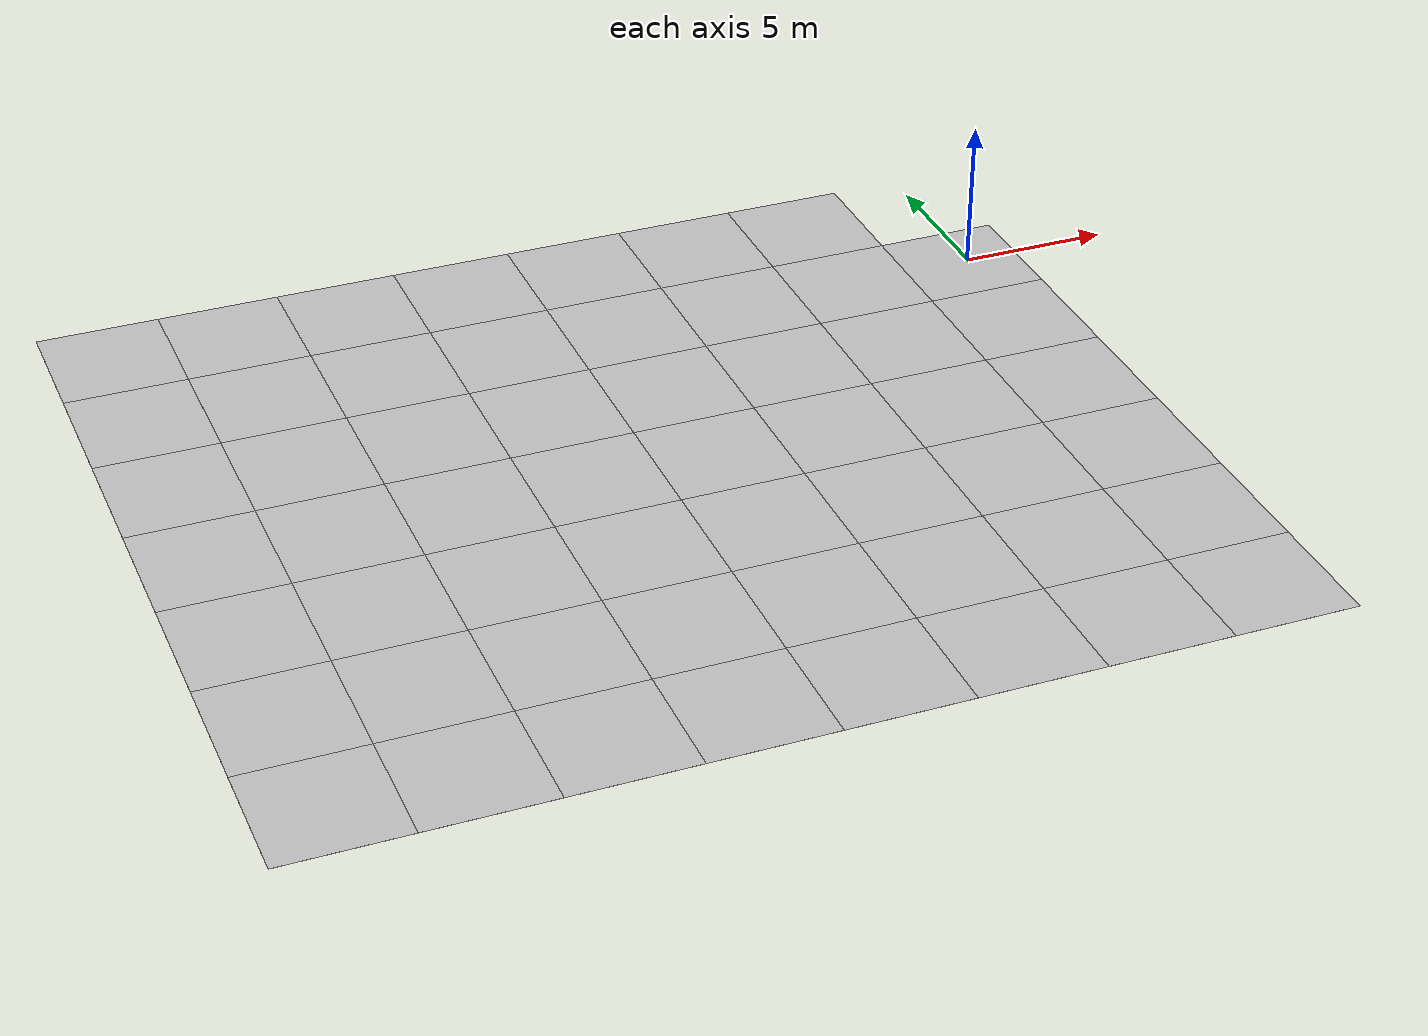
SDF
<sdf version="1.6">
 <world name="default">
  <model name="Tile/11-8">
   <static>1</static>
   <link name="link">
    <collision name="collision">
     <geometry><plane><normal>0 0 1</normal><size>4.096 4.096</size></plane></geometry>
     <surface><friction><ode><mu>100</mu><mu2>50</mu2></ode></friction></surface>
    </collision>
    <visual name="visual">
     <cast_shadows>0</cast_shadows>
     <geometry><plane><normal>0 0 1</normal><size>4.096 4.096</size></plane></geometry>
     <material>
      <script>
       <uri>file://materials/scripts</uri>
       <uri>file://materials/textures</uri>
       <name>Tile/5eab350b8220ac9944dbdfa4ac3288c7c17e24c3bf5df0dfcf6173d64dae00a1</name>
      </script>
     </material>
    </visual>
   </link>
   <pose>-28.969873005767766 -20.528103275294235 0 0 -0 0</pose>
  </model>
  <model name="Tile/11-9">
   <static>1</static>
   <link name="link">
    <collision name="collision">
     <geometry><plane><normal>0 0 1</normal><size>4.096 4.096</size></plane></geometry>
     <surface><friction><ode><mu>100</mu><mu2>50</mu2></ode></friction></surface>
    </collision>
    <visual name="visual">
     <cast_shadows>0</cast_shadows>
     <geometry><plane><normal>0 0 1</normal><size>4.096 4.096</size></plane></geometry>
     <material>
      <script>
       <uri>file://materials/scripts</uri>
       <uri>file://materials/textures</uri>
       <name>Tile/5eab350b8220ac9944dbdfa4ac3288c7c17e24c3bf5df0dfcf6173d64dae00a1</name>
      </script>
     </material>
    </visual>
   </link>
   <pose>-28.969873005767766 -16.43210327529424 0 0 -0 0</pose>
  </model>
  <model name="Tile/11-10">
   <static>1</static>
   <link name="link">
    <collision name="collision">
     <geometry><plane><normal>0 0 1</normal><size>4.096 4.096</size></plane></geometry>
     <surface><friction><ode><mu>100</mu><mu2>50</mu2></ode></friction></surface>
    </collision>
    <visual name="visual">
     <cast_shadows>0</cast_shadows>
     <geometry><plane><normal>0 0 1</normal><size>4.096 4.096</size></plane></geometry>
     <material>
      <script>
       <uri>file://materials/scripts</uri>
       <uri>file://materials/textures</uri>
       <name>Tile/5eab350b8220ac9944dbdfa4ac3288c7c17e24c3bf5df0dfcf6173d64dae00a1</name>
      </script>
     </material>
    </visual>
   </link>
   <pose>-28.969873005767766 -12.336103275294235 0 0 -0 0</pose>
  </model>
  <model name="Tile/11-11">
   <static>1</static>
   <link name="link">
    <collision name="collision">
     <geometry><plane><normal>0 0 1</normal><size>4.096 4.096</size></plane></geometry>
     <surface><friction><ode><mu>100</mu><mu2>50</mu2></ode></friction></surface>
    </collision>
    <visual name="visual">
     <cast_shadows>0</cast_shadows>
     <geometry><plane><normal>0 0 1</normal><size>4.096 4.096</size></plane></geometry>
     <material>
      <script>
       <uri>file://materials/scripts</uri>
       <uri>file://materials/textures</uri>
       <name>Tile/5eab350b8220ac9944dbdfa4ac3288c7c17e24c3bf5df0dfcf6173d64dae00a1</name>
      </script>
     </material>
    </visual>
   </link>
   <pose>-28.969873005767766 -8.240103275294238 0 0 -0 0</pose>
  </model>
  <model name="Tile/11-12">
   <static>1</static>
   <link name="link">
    <collision name="collision">
     <geometry><plane><normal>0 0 1</normal><size>4.096 4.096</size></plane></geometry>
     <surface><friction><ode><mu>100</mu><mu2>50</mu2></ode></friction></surface>
    </collision>
    <visual name="visual">
     <cast_shadows>0</cast_shadows>
     <geometry><plane><normal>0 0 1</normal><size>4.096 4.096</size></plane></geometry>
     <material>
      <script>
       <uri>file://materials/scripts</uri>
       <uri>file://materials/textures</uri>
       <name>Tile/eec58966ef78e20460b21e2e84b9e3ab91f2bbebfbbf568b90aaca1a8794eb22</name>
      </script>
     </material>
    </visual>
   </link>
   <pose>-28.969873005767766 -4.144103275294235 0 0 -0 0</pose>
  </model>
  <model name="Tile/11-13">
   <static>1</static>
   <link name="link">
    <collision name="collision">
     <geometry><plane><normal>0 0 1</normal><size>4.096 4.096</size></plane></geometry>
     <surface><friction><ode><mu>100</mu><mu2>50</mu2></ode></friction></surface>
    </collision>
    <visual name="visual">
     <cast_shadows>0</cast_shadows>
     <geometry><plane><normal>0 0 1</normal><size>4.096 4.096</size></plane></geometry>
     <material>
      <script>
       <uri>file://materials/scripts</uri>
       <uri>file://materials/textures</uri>
       <name>Tile/5eab350b8220ac9944dbdfa4ac3288c7c17e24c3bf5df0dfcf6173d64dae00a1</name>
      </script>
     </material>
    </visual>
   </link>
   <pose>-28.969873005767766 -0.0481032752942383 0 0 -0 0</pose>
  </model>
  <model name="Tile/11-14">
   <static>1</static>
   <link name="link">
    <collision name="collision">
     <geometry><plane><normal>0 0 1</normal><size>4.096 4.096</size></plane></geometry>
     <surface><friction><ode><mu>100</mu><mu2>50</mu2></ode></friction></surface>
    </collision>
    <visual name="visual">
     <cast_shadows>0</cast_shadows>
     <geometry><plane><normal>0 0 1</normal><size>4.096 4.096</size></plane></geometry>
     <material>
      <script>
       <uri>file://materials/scripts</uri>
       <uri>file://materials/textures</uri>
       <name>Tile/5eab350b8220ac9944dbdfa4ac3288c7c17e24c3bf5df0dfcf6173d64dae00a1</name>
      </script>
     </material>
    </visual>
   </link>
   <pose>-28.969873005767766 4.047896724705765 0 0 -0 0</pose>
  </model>
  <model name="Tile/12-8">
   <static>1</static>
   <link name="link">
    <collision name="collision">
     <geometry><plane><normal>0 0 1</normal><size>4.096 4.096</size></plane></geometry>
     <surface><friction><ode><mu>100</mu><mu2>50</mu2></ode></friction></surface>
    </collision>
    <visual name="visual">
     <cast_shadows>0</cast_shadows>
     <geometry><plane><normal>0 0 1</normal><size>4.096 4.096</size></plane></geometry>
     <material>
      <script>
       <uri>file://materials/scripts</uri>
       <uri>file://materials/textures</uri>
       <name>Tile/5eab350b8220ac9944dbdfa4ac3288c7c17e24c3bf5df0dfcf6173d64dae00a1</name>
      </script>
     </material>
    </visual>
   </link>
   <pose>-24.873873005767763 -20.528103275294235 0 0 -0 0</pose>
  </model>
  <model name="Tile/12-9">
   <static>1</static>
   <link name="link">
    <collision name="collision">
     <geometry><plane><normal>0 0 1</normal><size>4.096 4.096</size></plane></geometry>
     <surface><friction><ode><mu>100</mu><mu2>50</mu2></ode></friction></surface>
    </collision>
    <visual name="visual">
     <cast_shadows>0</cast_shadows>
     <geometry><plane><normal>0 0 1</normal><size>4.096 4.096</size></plane></geometry>
     <material>
      <script>
       <uri>file://materials/scripts</uri>
       <uri>file://materials/textures</uri>
       <name>Tile/5eab350b8220ac9944dbdfa4ac3288c7c17e24c3bf5df0dfcf6173d64dae00a1</name>
      </script>
     </material>
    </visual>
   </link>
   <pose>-24.873873005767763 -16.43210327529424 0 0 -0 0</pose>
  </model>
  <model name="Tile/12-10">
   <static>1</static>
   <link name="link">
    <collision name="collision">
     <geometry><plane><normal>0 0 1</normal><size>4.096 4.096</size></plane></geometry>
     <surface><friction><ode><mu>100</mu><mu2>50</mu2></ode></friction></surface>
    </collision>
    <visual name="visual">
     <cast_shadows>0</cast_shadows>
     <geometry><plane><normal>0 0 1</normal><size>4.096 4.096</size></plane></geometry>
     <material>
      <script>
       <uri>file://materials/scripts</uri>
       <uri>file://materials/textures</uri>
       <name>Tile/5eab350b8220ac9944dbdfa4ac3288c7c17e24c3bf5df0dfcf6173d64dae00a1</name>
      </script>
     </material>
    </visual>
   </link>
   <pose>-24.873873005767763 -12.336103275294235 0 0 -0 0</pose>
  </model>
  <model name="Tile/12-11">
   <static>1</static>
   <link name="link">
    <collision name="collision">
     <geometry><plane><normal>0 0 1</normal><size>4.096 4.096</size></plane></geometry>
     <surface><friction><ode><mu>100</mu><mu2>50</mu2></ode></friction></surface>
    </collision>
    <visual name="visual">
     <cast_shadows>0</cast_shadows>
     <geometry><plane><normal>0 0 1</normal><size>4.096 4.096</size></plane></geometry>
     <material>
      <script>
       <uri>file://materials/scripts</uri>
       <uri>file://materials/textures</uri>
       <name>Tile/5eab350b8220ac9944dbdfa4ac3288c7c17e24c3bf5df0dfcf6173d64dae00a1</name>
      </script>
     </material>
    </visual>
   </link>
   <pose>-24.873873005767763 -8.240103275294238 0 0 -0 0</pose>
  </model>
  <model name="Tile/12-12">
   <static>1</static>
   <link name="link">
    <collision name="collision">
     <geometry><plane><normal>0 0 1</normal><size>4.096 4.096</size></plane></geometry>
     <surface><friction><ode><mu>100</mu><mu2>50</mu2></ode></friction></surface>
    </collision>
    <visual name="visual">
     <cast_shadows>0</cast_shadows>
     <geometry><plane><normal>0 0 1</normal><size>4.096 4.096</size></plane></geometry>
     <material>
      <script>
       <uri>file://materials/scripts</uri>
       <uri>file://materials/textures</uri>
       <name>Tile/29ee3751b4b6f8a402ac6ea02498707a3ae5206cbc7031206f818a8b08b0fa33</name>
      </script>
     </material>
    </visual>
   </link>
   <pose>-24.873873005767763 -4.144103275294235 0 0 -0 0</pose>
  </model>
  <model name="Tile/12-13">
   <static>1</static>
   <link name="link">
    <collision name="collision">
     <geometry><plane><normal>0 0 1</normal><size>4.096 4.096</size></plane></geometry>
     <surface><friction><ode><mu>100</mu><mu2>50</mu2></ode></friction></surface>
    </collision>
    <visual name="visual">
     <cast_shadows>0</cast_shadows>
     <geometry><plane><normal>0 0 1</normal><size>4.096 4.096</size></plane></geometry>
     <material>
      <script>
       <uri>file://materials/scripts</uri>
       <uri>file://materials/textures</uri>
       <name>Tile/5eab350b8220ac9944dbdfa4ac3288c7c17e24c3bf5df0dfcf6173d64dae00a1</name>
      </script>
     </material>
    </visual>
   </link>
   <pose>-24.873873005767763 -0.0481032752942383 0 0 -0 0</pose>
  </model>
  <model name="Tile/12-14">
   <static>1</static>
   <link name="link">
    <collision name="collision">
     <geometry><plane><normal>0 0 1</normal><size>4.096 4.096</size></plane></geometry>
     <surface><friction><ode><mu>100</mu><mu2>50</mu2></ode></friction></surface>
    </collision>
    <visual name="visual">
     <cast_shadows>0</cast_shadows>
     <geometry><plane><normal>0 0 1</normal><size>4.096 4.096</size></plane></geometry>
     <material>
      <script>
       <uri>file://materials/scripts</uri>
       <uri>file://materials/textures</uri>
       <name>Tile/5eab350b8220ac9944dbdfa4ac3288c7c17e24c3bf5df0dfcf6173d64dae00a1</name>
      </script>
     </material>
    </visual>
   </link>
   <pose>-24.873873005767763 4.047896724705765 0 0 -0 0</pose>
  </model>
  <model name="Tile/13-8">
   <static>1</static>
   <link name="link">
    <collision name="collision">
     <geometry><plane><normal>0 0 1</normal><size>4.096 4.096</size></plane></geometry>
     <surface><friction><ode><mu>100</mu><mu2>50</mu2></ode></friction></surface>
    </collision>
    <visual name="visual">
     <cast_shadows>0</cast_shadows>
     <geometry><plane><normal>0 0 1</normal><size>4.096 4.096</size></plane></geometry>
     <material>
      <script>
       <uri>file://materials/scripts</uri>
       <uri>file://materials/textures</uri>
       <name>Tile/5eab350b8220ac9944dbdfa4ac3288c7c17e24c3bf5df0dfcf6173d64dae00a1</name>
      </script>
     </material>
    </visual>
   </link>
   <pose>-20.777873005767766 -20.528103275294235 0 0 -0 0</pose>
  </model>
  <model name="Tile/13-9">
   <static>1</static>
   <link name="link">
    <collision name="collision">
     <geometry><plane><normal>0 0 1</normal><size>4.096 4.096</size></plane></geometry>
     <surface><friction><ode><mu>100</mu><mu2>50</mu2></ode></friction></surface>
    </collision>
    <visual name="visual">
     <cast_shadows>0</cast_shadows>
     <geometry><plane><normal>0 0 1</normal><size>4.096 4.096</size></plane></geometry>
     <material>
      <script>
       <uri>file://materials/scripts</uri>
       <uri>file://materials/textures</uri>
       <name>Tile/5eab350b8220ac9944dbdfa4ac3288c7c17e24c3bf5df0dfcf6173d64dae00a1</name>
      </script>
     </material>
    </visual>
   </link>
   <pose>-20.777873005767766 -16.43210327529424 0 0 -0 0</pose>
  </model>
  <model name="Tile/13-10">
   <static>1</static>
   <link name="link">
    <collision name="collision">
     <geometry><plane><normal>0 0 1</normal><size>4.096 4.096</size></plane></geometry>
     <surface><friction><ode><mu>100</mu><mu2>50</mu2></ode></friction></surface>
    </collision>
    <visual name="visual">
     <cast_shadows>0</cast_shadows>
     <geometry><plane><normal>0 0 1</normal><size>4.096 4.096</size></plane></geometry>
     <material>
      <script>
       <uri>file://materials/scripts</uri>
       <uri>file://materials/textures</uri>
       <name>Tile/5eab350b8220ac9944dbdfa4ac3288c7c17e24c3bf5df0dfcf6173d64dae00a1</name>
      </script>
     </material>
    </visual>
   </link>
   <pose>-20.777873005767766 -12.336103275294235 0 0 -0 0</pose>
  </model>
  <model name="Tile/13-11">
   <static>1</static>
   <link name="link">
    <collision name="collision">
     <geometry><plane><normal>0 0 1</normal><size>4.096 4.096</size></plane></geometry>
     <surface><friction><ode><mu>100</mu><mu2>50</mu2></ode></friction></surface>
    </collision>
    <visual name="visual">
     <cast_shadows>0</cast_shadows>
     <geometry><plane><normal>0 0 1</normal><size>4.096 4.096</size></plane></geometry>
     <material>
      <script>
       <uri>file://materials/scripts</uri>
       <uri>file://materials/textures</uri>
       <name>Tile/5eab350b8220ac9944dbdfa4ac3288c7c17e24c3bf5df0dfcf6173d64dae00a1</name>
      </script>
     </material>
    </visual>
   </link>
   <pose>-20.777873005767766 -8.240103275294238 0 0 -0 0</pose>
  </model>
  <model name="Tile/13-12">
   <static>1</static>
   <link name="link">
    <collision name="collision">
     <geometry><plane><normal>0 0 1</normal><size>4.096 4.096</size></plane></geometry>
     <surface><friction><ode><mu>100</mu><mu2>50</mu2></ode></friction></surface>
    </collision>
    <visual name="visual">
     <cast_shadows>0</cast_shadows>
     <geometry><plane><normal>0 0 1</normal><size>4.096 4.096</size></plane></geometry>
     <material>
      <script>
       <uri>file://materials/scripts</uri>
       <uri>file://materials/textures</uri>
       <name>Tile/496bac2d71943fa59dd458b44c374264d2035a0fb73e6f8cea072eca83abb46b</name>
      </script>
     </material>
    </visual>
   </link>
   <pose>-20.777873005767766 -4.144103275294235 0 0 -0 0</pose>
  </model>
  <model name="Tile/13-13">
   <static>1</static>
   <link name="link">
    <collision name="collision">
     <geometry><plane><normal>0 0 1</normal><size>4.096 4.096</size></plane></geometry>
     <surface><friction><ode><mu>100</mu><mu2>50</mu2></ode></friction></surface>
    </collision>
    <visual name="visual">
     <cast_shadows>0</cast_shadows>
     <geometry><plane><normal>0 0 1</normal><size>4.096 4.096</size></plane></geometry>
     <material>
      <script>
       <uri>file://materials/scripts</uri>
       <uri>file://materials/textures</uri>
       <name>Tile/5eab350b8220ac9944dbdfa4ac3288c7c17e24c3bf5df0dfcf6173d64dae00a1</name>
      </script>
     </material>
    </visual>
   </link>
   <pose>-20.777873005767766 -0.0481032752942383 0 0 -0 0</pose>
  </model>
  <model name="Tile/13-14">
   <static>1</static>
   <link name="link">
    <collision name="collision">
     <geometry><plane><normal>0 0 1</normal><size>4.096 4.096</size></plane></geometry>
     <surface><friction><ode><mu>100</mu><mu2>50</mu2></ode></friction></surface>
    </collision>
    <visual name="visual">
     <cast_shadows>0</cast_shadows>
     <geometry><plane><normal>0 0 1</normal><size>4.096 4.096</size></plane></geometry>
     <material>
      <script>
       <uri>file://materials/scripts</uri>
       <uri>file://materials/textures</uri>
       <name>Tile/5eab350b8220ac9944dbdfa4ac3288c7c17e24c3bf5df0dfcf6173d64dae00a1</name>
      </script>
     </material>
    </visual>
   </link>
   <pose>-20.777873005767766 4.047896724705765 0 0 -0 0</pose>
  </model>
  <model name="Tile/14-8">
   <static>1</static>
   <link name="link">
    <collision name="collision">
     <geometry><plane><normal>0 0 1</normal><size>4.096 4.096</size></plane></geometry>
     <surface><friction><ode><mu>100</mu><mu2>50</mu2></ode></friction></surface>
    </collision>
    <visual name="visual">
     <cast_shadows>0</cast_shadows>
     <geometry><plane><normal>0 0 1</normal><size>4.096 4.096</size></plane></geometry>
     <material>
      <script>
       <uri>file://materials/scripts</uri>
       <uri>file://materials/textures</uri>
       <name>Tile/5eab350b8220ac9944dbdfa4ac3288c7c17e24c3bf5df0dfcf6173d64dae00a1</name>
      </script>
     </material>
    </visual>
   </link>
   <pose>-16.681873005767763 -20.528103275294235 0 0 -0 0</pose>
  </model>
  <model name="Tile/14-9">
   <static>1</static>
   <link name="link">
    <collision name="collision">
     <geometry><plane><normal>0 0 1</normal><size>4.096 4.096</size></plane></geometry>
     <surface><friction><ode><mu>100</mu><mu2>50</mu2></ode></friction></surface>
    </collision>
    <visual name="visual">
     <cast_shadows>0</cast_shadows>
     <geometry><plane><normal>0 0 1</normal><size>4.096 4.096</size></plane></geometry>
     <material>
      <script>
       <uri>file://materials/scripts</uri>
       <uri>file://materials/textures</uri>
       <name>Tile/5eab350b8220ac9944dbdfa4ac3288c7c17e24c3bf5df0dfcf6173d64dae00a1</name>
      </script>
     </material>
    </visual>
   </link>
   <pose>-16.681873005767763 -16.43210327529424 0 0 -0 0</pose>
  </model>
  <model name="Tile/14-10">
   <static>1</static>
   <link name="link">
    <collision name="collision">
     <geometry><plane><normal>0 0 1</normal><size>4.096 4.096</size></plane></geometry>
     <surface><friction><ode><mu>100</mu><mu2>50</mu2></ode></friction></surface>
    </collision>
    <visual name="visual">
     <cast_shadows>0</cast_shadows>
     <geometry><plane><normal>0 0 1</normal><size>4.096 4.096</size></plane></geometry>
     <material>
      <script>
       <uri>file://materials/scripts</uri>
       <uri>file://materials/textures</uri>
       <name>Tile/5eab350b8220ac9944dbdfa4ac3288c7c17e24c3bf5df0dfcf6173d64dae00a1</name>
      </script>
     </material>
    </visual>
   </link>
   <pose>-16.681873005767763 -12.336103275294235 0 0 -0 0</pose>
  </model>
  <model name="Tile/14-11">
   <static>1</static>
   <link name="link">
    <collision name="collision">
     <geometry><plane><normal>0 0 1</normal><size>4.096 4.096</size></plane></geometry>
     <surface><friction><ode><mu>100</mu><mu2>50</mu2></ode></friction></surface>
    </collision>
    <visual name="visual">
     <cast_shadows>0</cast_shadows>
     <geometry><plane><normal>0 0 1</normal><size>4.096 4.096</size></plane></geometry>
     <material>
      <script>
       <uri>file://materials/scripts</uri>
       <uri>file://materials/textures</uri>
       <name>Tile/5eab350b8220ac9944dbdfa4ac3288c7c17e24c3bf5df0dfcf6173d64dae00a1</name>
      </script>
     </material>
    </visual>
   </link>
   <pose>-16.681873005767763 -8.240103275294238 0 0 -0 0</pose>
  </model>
  <model name="Tile/14-12">
   <static>1</static>
   <link name="link">
    <collision name="collision">
     <geometry><plane><normal>0 0 1</normal><size>4.096 4.096</size></plane></geometry>
     <surface><friction><ode><mu>100</mu><mu2>50</mu2></ode></friction></surface>
    </collision>
    <visual name="visual">
     <cast_shadows>0</cast_shadows>
     <geometry><plane><normal>0 0 1</normal><size>4.096 4.096</size></plane></geometry>
     <material>
      <script>
       <uri>file://materials/scripts</uri>
       <uri>file://materials/textures</uri>
       <name>Tile/ad7ac0afaa750efc957b9ad1754208f5397fa1c89854af1d27ca277bd4bb52e2</name>
      </script>
     </material>
    </visual>
   </link>
   <pose>-16.681873005767763 -4.144103275294235 0 0 -0 0</pose>
  </model>
  <model name="Tile/14-13">
   <static>1</static>
   <link name="link">
    <collision name="collision">
     <geometry><plane><normal>0 0 1</normal><size>4.096 4.096</size></plane></geometry>
     <surface><friction><ode><mu>100</mu><mu2>50</mu2></ode></friction></surface>
    </collision>
    <visual name="visual">
     <cast_shadows>0</cast_shadows>
     <geometry><plane><normal>0 0 1</normal><size>4.096 4.096</size></plane></geometry>
     <material>
      <script>
       <uri>file://materials/scripts</uri>
       <uri>file://materials/textures</uri>
       <name>Tile/5eab350b8220ac9944dbdfa4ac3288c7c17e24c3bf5df0dfcf6173d64dae00a1</name>
      </script>
     </material>
    </visual>
   </link>
   <pose>-16.681873005767763 -0.0481032752942383 0 0 -0 0</pose>
  </model>
  <model name="Tile/14-14">
   <static>1</static>
   <link name="link">
    <collision name="collision">
     <geometry><plane><normal>0 0 1</normal><size>4.096 4.096</size></plane></geometry>
     <surface><friction><ode><mu>100</mu><mu2>50</mu2></ode></friction></surface>
    </collision>
    <visual name="visual">
     <cast_shadows>0</cast_shadows>
     <geometry><plane><normal>0 0 1</normal><size>4.096 4.096</size></plane></geometry>
     <material>
      <script>
       <uri>file://materials/scripts</uri>
       <uri>file://materials/textures</uri>
       <name>Tile/5eab350b8220ac9944dbdfa4ac3288c7c17e24c3bf5df0dfcf6173d64dae00a1</name>
      </script>
     </material>
    </visual>
   </link>
   <pose>-16.681873005767763 4.047896724705765 0 0 -0 0</pose>
  </model>
  <model name="Tile/15-8">
   <static>1</static>
   <link name="link">
    <collision name="collision">
     <geometry><plane><normal>0 0 1</normal><size>4.096 4.096</size></plane></geometry>
     <surface><friction><ode><mu>100</mu><mu2>50</mu2></ode></friction></surface>
    </collision>
    <visual name="visual">
     <cast_shadows>0</cast_shadows>
     <geometry><plane><normal>0 0 1</normal><size>4.096 4.096</size></plane></geometry>
     <material>
      <script>
       <uri>file://materials/scripts</uri>
       <uri>file://materials/textures</uri>
       <name>Tile/5eab350b8220ac9944dbdfa4ac3288c7c17e24c3bf5df0dfcf6173d64dae00a1</name>
      </script>
     </material>
    </visual>
   </link>
   <pose>-12.585873005767766 -20.528103275294235 0 0 -0 0</pose>
  </model>
  <model name="Tile/15-9">
   <static>1</static>
   <link name="link">
    <collision name="collision">
     <geometry><plane><normal>0 0 1</normal><size>4.096 4.096</size></plane></geometry>
     <surface><friction><ode><mu>100</mu><mu2>50</mu2></ode></friction></surface>
    </collision>
    <visual name="visual">
     <cast_shadows>0</cast_shadows>
     <geometry><plane><normal>0 0 1</normal><size>4.096 4.096</size></plane></geometry>
     <material>
      <script>
       <uri>file://materials/scripts</uri>
       <uri>file://materials/textures</uri>
       <name>Tile/5eab350b8220ac9944dbdfa4ac3288c7c17e24c3bf5df0dfcf6173d64dae00a1</name>
      </script>
     </material>
    </visual>
   </link>
   <pose>-12.585873005767766 -16.43210327529424 0 0 -0 0</pose>
  </model>
  <model name="Tile/15-10">
   <static>1</static>
   <link name="link">
    <collision name="collision">
     <geometry><plane><normal>0 0 1</normal><size>4.096 4.096</size></plane></geometry>
     <surface><friction><ode><mu>100</mu><mu2>50</mu2></ode></friction></surface>
    </collision>
    <visual name="visual">
     <cast_shadows>0</cast_shadows>
     <geometry><plane><normal>0 0 1</normal><size>4.096 4.096</size></plane></geometry>
     <material>
      <script>
       <uri>file://materials/scripts</uri>
       <uri>file://materials/textures</uri>
       <name>Tile/5eab350b8220ac9944dbdfa4ac3288c7c17e24c3bf5df0dfcf6173d64dae00a1</name>
      </script>
     </material>
    </visual>
   </link>
   <pose>-12.585873005767766 -12.336103275294235 0 0 -0 0</pose>
  </model>
  <model name="Tile/15-11">
   <static>1</static>
   <link name="link">
    <collision name="collision">
     <geometry><plane><normal>0 0 1</normal><size>4.096 4.096</size></plane></geometry>
     <surface><friction><ode><mu>100</mu><mu2>50</mu2></ode></friction></surface>
    </collision>
    <visual name="visual">
     <cast_shadows>0</cast_shadows>
     <geometry><plane><normal>0 0 1</normal><size>4.096 4.096</size></plane></geometry>
     <material>
      <script>
       <uri>file://materials/scripts</uri>
       <uri>file://materials/textures</uri>
       <name>Tile/5eab350b8220ac9944dbdfa4ac3288c7c17e24c3bf5df0dfcf6173d64dae00a1</name>
      </script>
     </material>
    </visual>
   </link>
   <pose>-12.585873005767766 -8.240103275294238 0 0 -0 0</pose>
  </model>
  <model name="Tile/15-12">
   <static>1</static>
   <link name="link">
    <collision name="collision">
     <geometry><plane><normal>0 0 1</normal><size>4.096 4.096</size></plane></geometry>
     <surface><friction><ode><mu>100</mu><mu2>50</mu2></ode></friction></surface>
    </collision>
    <visual name="visual">
     <cast_shadows>0</cast_shadows>
     <geometry><plane><normal>0 0 1</normal><size>4.096 4.096</size></plane></geometry>
     <material>
      <script>
       <uri>file://materials/scripts</uri>
       <uri>file://materials/textures</uri>
       <name>Tile/3df199c9dcce227fe72af8fafaff1cf35996d2222383a460ca34372ce958c5b9</name>
      </script>
     </material>
    </visual>
   </link>
   <pose>-12.585873005767766 -4.144103275294235 0 0 -0 0</pose>
  </model>
  <model name="Tile/15-13">
   <static>1</static>
   <link name="link">
    <collision name="collision">
     <geometry><plane><normal>0 0 1</normal><size>4.096 4.096</size></plane></geometry>
     <surface><friction><ode><mu>100</mu><mu2>50</mu2></ode></friction></surface>
    </collision>
    <visual name="visual">
     <cast_shadows>0</cast_shadows>
     <geometry><plane><normal>0 0 1</normal><size>4.096 4.096</size></plane></geometry>
     <material>
      <script>
       <uri>file://materials/scripts</uri>
       <uri>file://materials/textures</uri>
       <name>Tile/5eab350b8220ac9944dbdfa4ac3288c7c17e24c3bf5df0dfcf6173d64dae00a1</name>
      </script>
     </material>
    </visual>
   </link>
   <pose>-12.585873005767766 -0.0481032752942383 0 0 -0 0</pose>
  </model>
  <model name="Tile/15-14">
   <static>1</static>
   <link name="link">
    <collision name="collision">
     <geometry><plane><normal>0 0 1</normal><size>4.096 4.096</size></plane></geometry>
     <surface><friction><ode><mu>100</mu><mu2>50</mu2></ode></friction></surface>
    </collision>
    <visual name="visual">
     <cast_shadows>0</cast_shadows>
     <geometry><plane><normal>0 0 1</normal><size>4.096 4.096</size></plane></geometry>
     <material>
      <script>
       <uri>file://materials/scripts</uri>
       <uri>file://materials/textures</uri>
       <name>Tile/5eab350b8220ac9944dbdfa4ac3288c7c17e24c3bf5df0dfcf6173d64dae00a1</name>
      </script>
     </material>
    </visual>
   </link>
   <pose>-12.585873005767766 4.047896724705765 0 0 -0 0</pose>
  </model>
  <model name="Tile/16-8">
   <static>1</static>
   <link name="link">
    <collision name="collision">
     <geometry><plane><normal>0 0 1</normal><size>4.096 4.096</size></plane></geometry>
     <surface><friction><ode><mu>100</mu><mu2>50</mu2></ode></friction></surface>
    </collision>
    <visual name="visual">
     <cast_shadows>0</cast_shadows>
     <geometry><plane><normal>0 0 1</normal><size>4.096 4.096</size></plane></geometry>
     <material>
      <script>
       <uri>file://materials/scripts</uri>
       <uri>file://materials/textures</uri>
       <name>Tile/5eab350b8220ac9944dbdfa4ac3288c7c17e24c3bf5df0dfcf6173d64dae00a1</name>
      </script>
     </material>
    </visual>
   </link>
   <pose>-8.489873005767762 -20.528103275294235 0 0 -0 0</pose>
  </model>
  <model name="Tile/16-9">
   <static>1</static>
   <link name="link">
    <collision name="collision">
     <geometry><plane><normal>0 0 1</normal><size>4.096 4.096</size></plane></geometry>
     <surface><friction><ode><mu>100</mu><mu2>50</mu2></ode></friction></surface>
    </collision>
    <visual name="visual">
     <cast_shadows>0</cast_shadows>
     <geometry><plane><normal>0 0 1</normal><size>4.096 4.096</size></plane></geometry>
     <material>
      <script>
       <uri>file://materials/scripts</uri>
       <uri>file://materials/textures</uri>
       <name>Tile/5eab350b8220ac9944dbdfa4ac3288c7c17e24c3bf5df0dfcf6173d64dae00a1</name>
      </script>
     </material>
    </visual>
   </link>
   <pose>-8.489873005767762 -16.43210327529424 0 0 -0 0</pose>
  </model>
  <model name="Tile/16-10">
   <static>1</static>
   <link name="link">
    <collision name="collision">
     <geometry><plane><normal>0 0 1</normal><size>4.096 4.096</size></plane></geometry>
     <surface><friction><ode><mu>100</mu><mu2>50</mu2></ode></friction></surface>
    </collision>
    <visual name="visual">
     <cast_shadows>0</cast_shadows>
     <geometry><plane><normal>0 0 1</normal><size>4.096 4.096</size></plane></geometry>
     <material>
      <script>
       <uri>file://materials/scripts</uri>
       <uri>file://materials/textures</uri>
       <name>Tile/5eab350b8220ac9944dbdfa4ac3288c7c17e24c3bf5df0dfcf6173d64dae00a1</name>
      </script>
     </material>
    </visual>
   </link>
   <pose>-8.489873005767762 -12.336103275294235 0 0 -0 0</pose>
  </model>
  <model name="Tile/16-11">
   <static>1</static>
   <link name="link">
    <collision name="collision">
     <geometry><plane><normal>0 0 1</normal><size>4.096 4.096</size></plane></geometry>
     <surface><friction><ode><mu>100</mu><mu2>50</mu2></ode></friction></surface>
    </collision>
    <visual name="visual">
     <cast_shadows>0</cast_shadows>
     <geometry><plane><normal>0 0 1</normal><size>4.096 4.096</size></plane></geometry>
     <material>
      <script>
       <uri>file://materials/scripts</uri>
       <uri>file://materials/textures</uri>
       <name>Tile/5eab350b8220ac9944dbdfa4ac3288c7c17e24c3bf5df0dfcf6173d64dae00a1</name>
      </script>
     </material>
    </visual>
   </link>
   <pose>-8.489873005767762 -8.240103275294238 0 0 -0 0</pose>
  </model>
  <model name="Tile/16-12">
   <static>1</static>
   <link name="link">
    <collision name="collision">
     <geometry><plane><normal>0 0 1</normal><size>4.096 4.096</size></plane></geometry>
     <surface><friction><ode><mu>100</mu><mu2>50</mu2></ode></friction></surface>
    </collision>
    <visual name="visual">
     <cast_shadows>0</cast_shadows>
     <geometry><plane><normal>0 0 1</normal><size>4.096 4.096</size></plane></geometry>
     <material>
      <script>
       <uri>file://materials/scripts</uri>
       <uri>file://materials/textures</uri>
       <name>Tile/a0a771f98f17df126250b0ac84b6225db732caa95d2b2467b66e2c3ac4b6991c</name>
      </script>
     </material>
    </visual>
   </link>
   <pose>-8.489873005767762 -4.144103275294235 0 0 -0 0</pose>
  </model>
  <model name="Tile/16-13">
   <static>1</static>
   <link name="link">
    <collision name="collision">
     <geometry><plane><normal>0 0 1</normal><size>4.096 4.096</size></plane></geometry>
     <surface><friction><ode><mu>100</mu><mu2>50</mu2></ode></friction></surface>
    </collision>
    <visual name="visual">
     <cast_shadows>0</cast_shadows>
     <geometry><plane><normal>0 0 1</normal><size>4.096 4.096</size></plane></geometry>
     <material>
      <script>
       <uri>file://materials/scripts</uri>
       <uri>file://materials/textures</uri>
       <name>Tile/13c360e641694f810b5e8acc3da6399e670d7b98846d470180ac95ecb1832f80</name>
      </script>
     </material>
    </visual>
   </link>
   <pose>-8.489873005767762 -0.0481032752942383 0 0 -0 0</pose>
  </model>
  <model name="Tile/16-14">
   <static>1</static>
   <link name="link">
    <collision name="collision">
     <geometry><plane><normal>0 0 1</normal><size>4.096 4.096</size></plane></geometry>
     <surface><friction><ode><mu>100</mu><mu2>50</mu2></ode></friction></surface>
    </collision>
    <visual name="visual">
     <cast_shadows>0</cast_shadows>
     <geometry><plane><normal>0 0 1</normal><size>4.096 4.096</size></plane></geometry>
     <material>
      <script>
       <uri>file://materials/scripts</uri>
       <uri>file://materials/textures</uri>
       <name>Tile/5eab350b8220ac9944dbdfa4ac3288c7c17e24c3bf5df0dfcf6173d64dae00a1</name>
      </script>
     </material>
    </visual>
   </link>
   <pose>-8.489873005767762 4.047896724705765 0 0 -0 0</pose>
  </model>
  <model name="Tile/17-8">
   <static>1</static>
   <link name="link">
    <collision name="collision">
     <geometry><plane><normal>0 0 1</normal><size>4.096 4.096</size></plane></geometry>
     <surface><friction><ode><mu>100</mu><mu2>50</mu2></ode></friction></surface>
    </collision>
    <visual name="visual">
     <cast_shadows>0</cast_shadows>
     <geometry><plane><normal>0 0 1</normal><size>4.096 4.096</size></plane></geometry>
     <material>
      <script>
       <uri>file://materials/scripts</uri>
       <uri>file://materials/textures</uri>
       <name>Tile/5eab350b8220ac9944dbdfa4ac3288c7c17e24c3bf5df0dfcf6173d64dae00a1</name>
      </script>
     </material>
    </visual>
   </link>
   <pose>-4.393873005767759 -20.528103275294235 0 0 -0 0</pose>
  </model>
  <model name="Tile/17-9">
   <static>1</static>
   <link name="link">
    <collision name="collision">
     <geometry><plane><normal>0 0 1</normal><size>4.096 4.096</size></plane></geometry>
     <surface><friction><ode><mu>100</mu><mu2>50</mu2></ode></friction></surface>
    </collision>
    <visual name="visual">
     <cast_shadows>0</cast_shadows>
     <geometry><plane><normal>0 0 1</normal><size>4.096 4.096</size></plane></geometry>
     <material>
      <script>
       <uri>file://materials/scripts</uri>
       <uri>file://materials/textures</uri>
       <name>Tile/5eab350b8220ac9944dbdfa4ac3288c7c17e24c3bf5df0dfcf6173d64dae00a1</name>
      </script>
     </material>
    </visual>
   </link>
   <pose>-4.393873005767759 -16.43210327529424 0 0 -0 0</pose>
  </model>
  <model name="Tile/17-10">
   <static>1</static>
   <link name="link">
    <collision name="collision">
     <geometry><plane><normal>0 0 1</normal><size>4.096 4.096</size></plane></geometry>
     <surface><friction><ode><mu>100</mu><mu2>50</mu2></ode></friction></surface>
    </collision>
    <visual name="visual">
     <cast_shadows>0</cast_shadows>
     <geometry><plane><normal>0 0 1</normal><size>4.096 4.096</size></plane></geometry>
     <material>
      <script>
       <uri>file://materials/scripts</uri>
       <uri>file://materials/textures</uri>
       <name>Tile/5eab350b8220ac9944dbdfa4ac3288c7c17e24c3bf5df0dfcf6173d64dae00a1</name>
      </script>
     </material>
    </visual>
   </link>
   <pose>-4.393873005767759 -12.336103275294235 0 0 -0 0</pose>
  </model>
  <model name="Tile/17-11">
   <static>1</static>
   <link name="link">
    <collision name="collision">
     <geometry><plane><normal>0 0 1</normal><size>4.096 4.096</size></plane></geometry>
     <surface><friction><ode><mu>100</mu><mu2>50</mu2></ode></friction></surface>
    </collision>
    <visual name="visual">
     <cast_shadows>0</cast_shadows>
     <geometry><plane><normal>0 0 1</normal><size>4.096 4.096</size></plane></geometry>
     <material>
      <script>
       <uri>file://materials/scripts</uri>
       <uri>file://materials/textures</uri>
       <name>Tile/5eab350b8220ac9944dbdfa4ac3288c7c17e24c3bf5df0dfcf6173d64dae00a1</name>
      </script>
     </material>
    </visual>
   </link>
   <pose>-4.393873005767759 -8.240103275294238 0 0 -0 0</pose>
  </model>
  <model name="Tile/17-12">
   <static>1</static>
   <link name="link">
    <collision name="collision">
     <geometry><plane><normal>0 0 1</normal><size>4.096 4.096</size></plane></geometry>
     <surface><friction><ode><mu>100</mu><mu2>50</mu2></ode></friction></surface>
    </collision>
    <visual name="visual">
     <cast_shadows>0</cast_shadows>
     <geometry><plane><normal>0 0 1</normal><size>4.096 4.096</size></plane></geometry>
     <material>
      <script>
       <uri>file://materials/scripts</uri>
       <uri>file://materials/textures</uri>
       <name>Tile/dce244d5af8fddd82db9cc31533e1bd1d43d32c141f87651b1cb83ec724b695d</name>
      </script>
     </material>
    </visual>
   </link>
   <pose>-4.393873005767759 -4.144103275294235 0 0 -0 0</pose>
  </model>
  <model name="Tile/17-13">
   <static>1</static>
   <link name="link">
    <collision name="collision">
     <geometry><plane><normal>0 0 1</normal><size>4.096 4.096</size></plane></geometry>
     <surface><friction><ode><mu>100</mu><mu2>50</mu2></ode></friction></surface>
    </collision>
    <visual name="visual">
     <cast_shadows>0</cast_shadows>
     <geometry><plane><normal>0 0 1</normal><size>4.096 4.096</size></plane></geometry>
     <material>
      <script>
       <uri>file://materials/scripts</uri>
       <uri>file://materials/textures</uri>
       <name>Tile/05168bd088b2ab0d6e7d7742e0257809bbd3828ed0efb0d2ff6ed92b19510052</name>
      </script>
     </material>
    </visual>
   </link>
   <pose>-4.393873005767759 -0.0481032752942383 0 0 -0 0</pose>
  </model>
  <model name="Tile/17-14">
   <static>1</static>
   <link name="link">
    <collision name="collision">
     <geometry><plane><normal>0 0 1</normal><size>4.096 4.096</size></plane></geometry>
     <surface><friction><ode><mu>100</mu><mu2>50</mu2></ode></friction></surface>
    </collision>
    <visual name="visual">
     <cast_shadows>0</cast_shadows>
     <geometry><plane><normal>0 0 1</normal><size>4.096 4.096</size></plane></geometry>
     <material>
      <script>
       <uri>file://materials/scripts</uri>
       <uri>file://materials/textures</uri>
       <name>Tile/5eab350b8220ac9944dbdfa4ac3288c7c17e24c3bf5df0dfcf6173d64dae00a1</name>
      </script>
     </material>
    </visual>
   </link>
   <pose>-4.393873005767759 4.047896724705765 0 0 -0 0</pose>
  </model>
  <model name="Tile/18-8">
   <static>1</static>
   <link name="link">
    <collision name="collision">
     <geometry><plane><normal>0 0 1</normal><size>4.096 4.096</size></plane></geometry>
     <surface><friction><ode><mu>100</mu><mu2>50</mu2></ode></friction></surface>
    </collision>
    <visual name="visual">
     <cast_shadows>0</cast_shadows>
     <geometry><plane><normal>0 0 1</normal><size>4.096 4.096</size></plane></geometry>
     <material>
      <script>
       <uri>file://materials/scripts</uri>
       <uri>file://materials/textures</uri>
       <name>Tile/5eab350b8220ac9944dbdfa4ac3288c7c17e24c3bf5df0dfcf6173d64dae00a1</name>
      </script>
     </material>
    </visual>
   </link>
   <pose>-0.2978730057677694 -20.528103275294235 0 0 -0 0</pose>
  </model>
  <model name="Tile/18-9">
   <static>1</static>
   <link name="link">
    <collision name="collision">
     <geometry><plane><normal>0 0 1</normal><size>4.096 4.096</size></plane></geometry>
     <surface><friction><ode><mu>100</mu><mu2>50</mu2></ode></friction></surface>
    </collision>
    <visual name="visual">
     <cast_shadows>0</cast_shadows>
     <geometry><plane><normal>0 0 1</normal><size>4.096 4.096</size></plane></geometry>
     <material>
      <script>
       <uri>file://materials/scripts</uri>
       <uri>file://materials/textures</uri>
       <name>Tile/5eab350b8220ac9944dbdfa4ac3288c7c17e24c3bf5df0dfcf6173d64dae00a1</name>
      </script>
     </material>
    </visual>
   </link>
   <pose>-0.2978730057677694 -16.43210327529424 0 0 -0 0</pose>
  </model>
  <model name="Tile/18-10">
   <static>1</static>
   <link name="link">
    <collision name="collision">
     <geometry><plane><normal>0 0 1</normal><size>4.096 4.096</size></plane></geometry>
     <surface><friction><ode><mu>100</mu><mu2>50</mu2></ode></friction></surface>
    </collision>
    <visual name="visual">
     <cast_shadows>0</cast_shadows>
     <geometry><plane><normal>0 0 1</normal><size>4.096 4.096</size></plane></geometry>
     <material>
      <script>
       <uri>file://materials/scripts</uri>
       <uri>file://materials/textures</uri>
       <name>Tile/5eab350b8220ac9944dbdfa4ac3288c7c17e24c3bf5df0dfcf6173d64dae00a1</name>
      </script>
     </material>
    </visual>
   </link>
   <pose>-0.2978730057677694 -12.336103275294235 0 0 -0 0</pose>
  </model>
  <model name="Tile/18-11">
   <static>1</static>
   <link name="link">
    <collision name="collision">
     <geometry><plane><normal>0 0 1</normal><size>4.096 4.096</size></plane></geometry>
     <surface><friction><ode><mu>100</mu><mu2>50</mu2></ode></friction></surface>
    </collision>
    <visual name="visual">
     <cast_shadows>0</cast_shadows>
     <geometry><plane><normal>0 0 1</normal><size>4.096 4.096</size></plane></geometry>
     <material>
      <script>
       <uri>file://materials/scripts</uri>
       <uri>file://materials/textures</uri>
       <name>Tile/5eab350b8220ac9944dbdfa4ac3288c7c17e24c3bf5df0dfcf6173d64dae00a1</name>
      </script>
     </material>
    </visual>
   </link>
   <pose>-0.2978730057677694 -8.240103275294238 0 0 -0 0</pose>
  </model>
  <model name="Tile/18-12">
   <static>1</static>
   <link name="link">
    <collision name="collision">
     <geometry><plane><normal>0 0 1</normal><size>4.096 4.096</size></plane></geometry>
     <surface><friction><ode><mu>100</mu><mu2>50</mu2></ode></friction></surface>
    </collision>
    <visual name="visual">
     <cast_shadows>0</cast_shadows>
     <geometry><plane><normal>0 0 1</normal><size>4.096 4.096</size></plane></geometry>
     <material>
      <script>
       <uri>file://materials/scripts</uri>
       <uri>file://materials/textures</uri>
       <name>Tile/5eab350b8220ac9944dbdfa4ac3288c7c17e24c3bf5df0dfcf6173d64dae00a1</name>
      </script>
     </material>
    </visual>
   </link>
   <pose>-0.2978730057677694 -4.144103275294235 0 0 -0 0</pose>
  </model>
  <model name="Tile/18-13">
   <static>1</static>
   <link name="link">
    <collision name="collision">
     <geometry><plane><normal>0 0 1</normal><size>4.096 4.096</size></plane></geometry>
     <surface><friction><ode><mu>100</mu><mu2>50</mu2></ode></friction></surface>
    </collision>
    <visual name="visual">
     <cast_shadows>0</cast_shadows>
     <geometry><plane><normal>0 0 1</normal><size>4.096 4.096</size></plane></geometry>
     <material>
      <script>
       <uri>file://materials/scripts</uri>
       <uri>file://materials/textures</uri>
       <name>Tile/425cb8985512302cc927911a9a29f6c08c1aab7fc39c7820d8d61dd243a5633a</name>
      </script>
     </material>
    </visual>
   </link>
   <pose>-0.2978730057677694 -0.0481032752942383 0 0 -0 0</pose>
  </model>
 </world>
</sdf>
